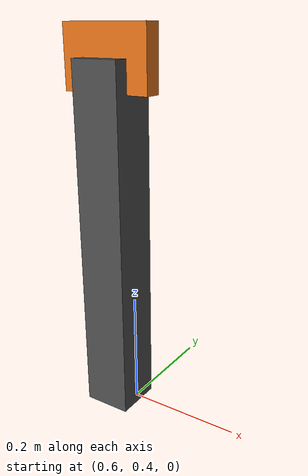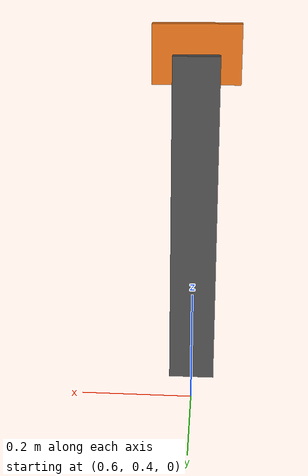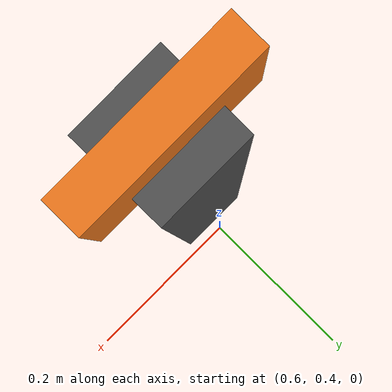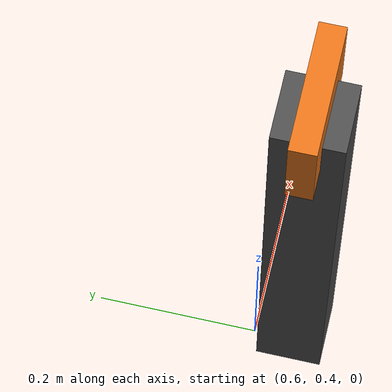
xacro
<?xml version="1.0"?>
<robot xmlns:xacro="http://ros.org/wiki/xacro" name="pusher">

  <!-- Path to the controller manager YAML, injected by the launch file. -->
  <xacro:arg name="controllers_config" default=""/>

  <!-- Pose of the pusher base in the world (beside the belt end). -->
  <xacro:property name="base_x" value="0.6"/>
  <xacro:property name="base_y" value="0.35"/>
  <xacro:property name="base_z" value="0.615"/>

  <!-- Prismatic stroke (m): 0 = retracted (clear of belt), negative = across. -->
  <xacro:property name="stroke" value="0.70"/>

  <material name="pusher_orange">
    <color rgba="0.9 0.45 0.1 1"/>
  </material>
  <material name="pusher_grey">
    <color rgba="0.3 0.3 0.3 1"/>
  </material>

  <!-- Reserved world link: a fixed joint to it anchors the base in Gazebo. -->
  <link name="world"/>

  <joint name="world_joint" type="fixed">
    <parent link="world"/>
    <child link="base_link"/>
    <origin xyz="${base_x} ${base_y} ${base_z}" rpy="0 0 0"/>
  </joint>

  <!-- Static mounting post: reaches from the mount height down to the floor. -->
  <link name="base_link">
    <inertial>
      <mass value="2.0"/>
      <inertia ixx="0.02" ixy="0" ixz="0" iyy="0.02" iyz="0" izz="0.01"/>
    </inertial>
    <visual>
      <origin xyz="0 0 -0.29" rpy="0 0 0"/>
      <geometry><box size="0.08 0.08 0.58"/></geometry>
      <material name="pusher_grey"/>
    </visual>
    <collision>
      <origin xyz="0 0 -0.29" rpy="0 0 0"/>
      <geometry><box size="0.08 0.08 0.58"/></geometry>
    </collision>
  </link>

  <!-- Prismatic joint sliding along Y. Retracted at 0, extends toward -Y. -->
  <joint name="pusher_joint" type="prismatic">
    <parent link="base_link"/>
    <child link="pusher_link"/>
    <origin xyz="0 0 0" rpy="0 0 0"/>
    <axis xyz="0 1 0"/>
    <limit lower="-${stroke}" upper="0.0" effort="300.0" velocity="3.0"/>
    <dynamics damping="0.05" friction="0.0"/>
  </joint>

  <!-- Paddle that contacts the cube. -->
  <link name="pusher_link">
    <inertial>
      <mass value="0.3"/>
      <inertia ixx="0.00027" ixy="0" ixz="0"
               iyy="0.00081" iyz="0" izz="0.00059"/>
    </inertial>
    <visual>
      <origin xyz="0 0 0" rpy="0 0 0"/>
      <geometry><box size="0.15 0.03 0.10"/></geometry>
      <material name="pusher_orange"/>
    </visual>
    <collision>
      <origin xyz="0 0 0" rpy="0 0 0"/>
      <geometry><box size="0.15 0.03 0.10"/></geometry>
      <surface>
        <friction><ode><mu>1.0</mu><mu2>1.0</mu2></ode></friction>
      </surface>
    </collision>
  </link>

  <!-- ros2_control hardware: expose position command + position/velocity state. -->
  <ros2_control name="GazeboSimSystem" type="system">
    <hardware>
      <plugin>gz_ros2_control/GazeboSimSystem</plugin>
    </hardware>
    <joint name="pusher_joint">
      <command_interface name="position">
        <param name="min">-${stroke}</param>
        <param name="max">0.0</param>
      </command_interface>
      <state_interface name="position"/>
      <state_interface name="velocity"/>
    </joint>
  </ros2_control>

  <!-- gz_ros2_control system plugin: starts a controller_manager inside Gazebo. -->
  <gazebo>
    <plugin filename="gz_ros2_control-system"
            name="gz_ros2_control::GazeboSimROS2ControlPlugin">
      <parameters>$(arg controllers_config)</parameters>
    </plugin>
  </gazebo>

</robot>
